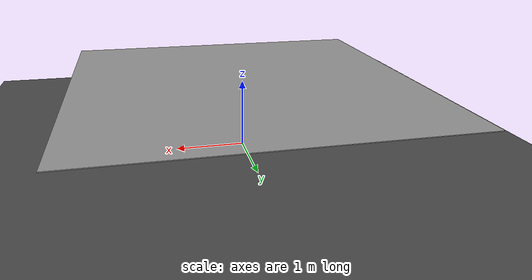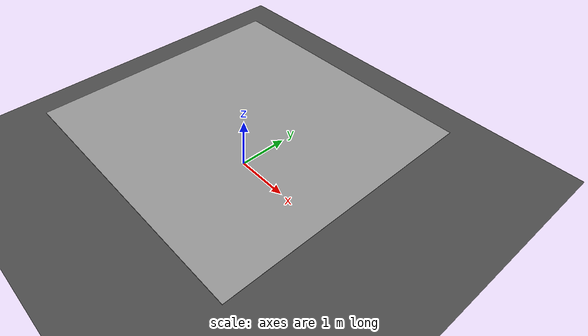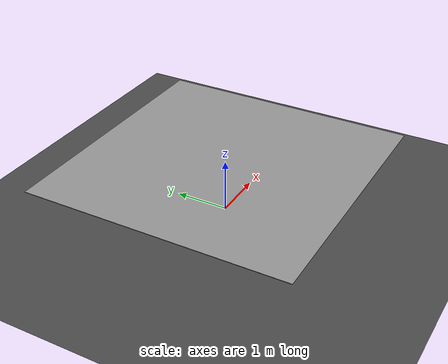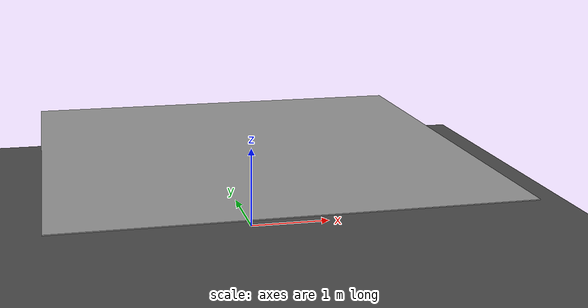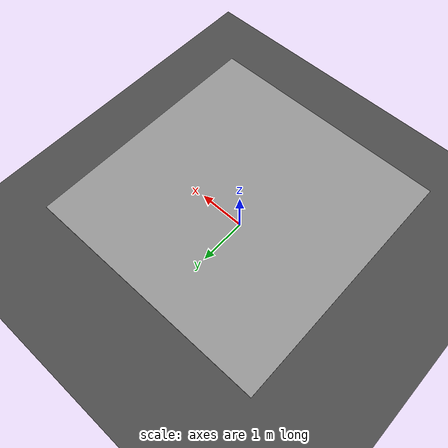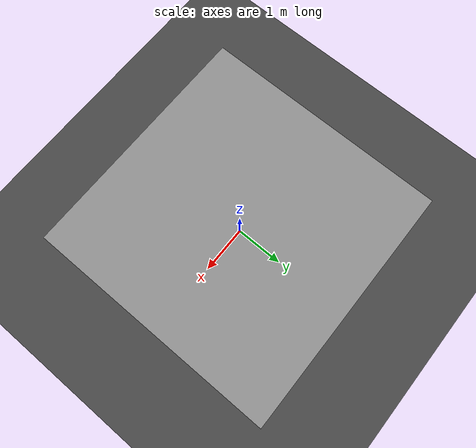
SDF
<?xml version="1.0" ?>
<sdf version='1.4'>
  <world name='default'>

    <physics type='ode'>
      <max_step_size>0.001</max_step_size>
      <real_time_factor>1</real_time_factor>
      <real_time_update_rate>1000</real_time_update_rate>
      <gravity>0 0 -9.8</gravity>
    </physics>

    <spherical_coordinates>
      <surface_model>EARTH_WGS84</surface_model>
      <latitude_deg>0</latitude_deg>
      <longitude_deg>0</longitude_deg>
      <elevation>0</elevation>
      <heading_deg>0</heading_deg>
    </spherical_coordinates>

    <!-- A global light source -->
   <scene>
      <sky>
        <clouds>
          <speed>12</speed>
        </clouds>
      </sky>
   </scene>

   <include>
     <uri>model://sun</uri>
   </include>

  <model name="ground_plane">
    <static>true</static>
    <link name="link">
      <collision name="collision">
        <geometry>
          <plane>
            <normal>0 0 1</normal>
            <size>100 100</size>
          </plane>
        </geometry>
        <surface>
          <friction>
            <ode>
              <mu>100</mu>
              <mu2>50</mu2>
            </ode>
          </friction>
        </surface>
      </collision>
      <visual name="visual">
        <cast_shadows>false</cast_shadows>
        <geometry>
          <plane>
            <normal>0 0 1</normal>
            <size>100 100</size>
          </plane>
        </geometry>
        <material>
          <script>
            <uri>model://asphalt_plane/materials/scripts</uri>
            <uri>model://asphalt_plane/materials/textures</uri>
            <name>vrc/asphalt</name>
          </script>
        </material>
      </visual>
    </link>
  </model>

  <model name="ceiling_plane">
    <static>true</static>
    <pose frame=''>0 0 1.0005 0 0 0</pose>
    <link name="link">
      <collision name="collision">
        <geometry>
          <box>
            <size>5.0 5.0 0.01</size>
          </box>
        </geometry>
        <surface>
          <friction>
            <ode>
              <mu>100</mu>
              <mu2>50</mu2>
            </ode>
          </friction>
        </surface>
      </collision>
      <visual name="visual">
        <cast_shadows>true</cast_shadows>
        <geometry>
          <box>
            <size>5.0 5.0 0.01</size>
          </box>
        </geometry>
        <material>
          <script>
            <uri>file://media/materials/scripts/gazebo.material</uri>
            <name>Gazebo/Grey</name>
          </script>
        </material>
      </visual>
    </link>
  </model>

  </world>
</sdf>
